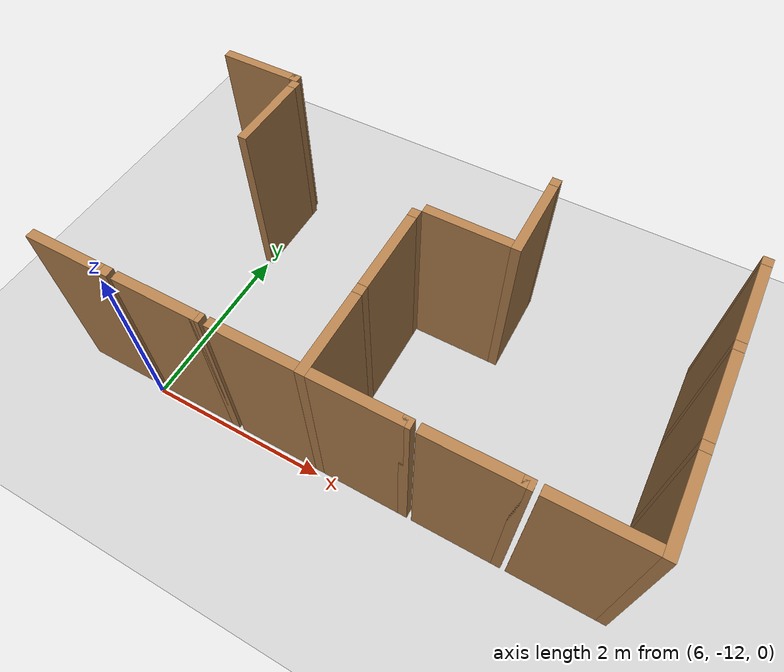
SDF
<sdf version="1.6">
 <world name="default">
  <include><uri>model://sun</uri></include>
  <model name="ground_plane">
   <static>true</static>
   <link name="link">
    <collision name="collision"><geometry><plane><size>12.0 12.0</size></plane></geometry></collision>
    <visual name="visual">
     <cast_shadows>false</cast_shadows>
     <geometry><plane><size>12.0 12.0</size></plane></geometry>
     <material>
      <script><uri>file://media/materials/scripts/gazebo.material</uri><name>Gazebo/Grey</name></script>
     </material>
    </visual>
   </link>
   <pose>6.0 -6.0 0 0 0 0</pose>
  </model>
  <model name="vwall_9_6">
   <pose>6.0 -9.5 1.0 0 0 0</pose>
   <link name="link">
    <collision name="collision"><geometry><box><size>0.1 0.9 2</size></box></geometry></collision>
    <visual name="visual">
     <geometry><box><size>0.1 0.9 2</size></box></geometry>
     <material>
      <script><uri>file://media/materials/scripts/gazebo.material</uri><name>Gazebo/Wood</name></script>
     </material>
    </visual>
   </link>
  </model>
  <model name="joint_6.0_-9.0">
   <pose>6.0 -9.0 1.0 0 0 0</pose>
   <link name="link">
    <collision name="collision"><geometry><box><size>0.1 0.1 2</size></box></geometry></collision>
    <visual name="visual">
     <geometry><box><size>0.1 0.1 2</size></box></geometry>
     <material>
      <script><uri>file://media/materials/scripts/gazebo.material</uri><name>Gazebo/Wood</name></script>
     </material>
    </visual>
   </link>
  </model>
  <model name="vwall_9_9">
   <pose>9.0 -9.5 1.0 0 0 0</pose>
   <link name="link">
    <collision name="collision"><geometry><box><size>0.1 0.9 2</size></box></geometry></collision>
    <visual name="visual">
     <geometry><box><size>0.1 0.9 2</size></box></geometry>
     <material>
      <script><uri>file://media/materials/scripts/gazebo.material</uri><name>Gazebo/Wood</name></script>
     </material>
    </visual>
   </link>
  </model>
  <model name="joint_9.0_-9.0">
   <pose>9.0 -9.0 1.0 0 0 0</pose>
   <link name="link">
    <collision name="collision"><geometry><box><size>0.1 0.1 2</size></box></geometry></collision>
    <visual name="visual">
     <geometry><box><size>0.1 0.1 2</size></box></geometry>
     <material>
      <script><uri>file://media/materials/scripts/gazebo.material</uri><name>Gazebo/Wood</name></script>
     </material>
    </visual>
   </link>
  </model>
  <model name="vwall_9_11">
   <pose>11.0 -9.5 1.0 0 0 0</pose>
   <link name="link">
    <collision name="collision"><geometry><box><size>0.1 0.9 2</size></box></geometry></collision>
    <visual name="visual">
     <geometry><box><size>0.1 0.9 2</size></box></geometry>
     <material>
      <script><uri>file://media/materials/scripts/gazebo.material</uri><name>Gazebo/Wood</name></script>
     </material>
    </visual>
   </link>
  </model>
  <model name="joint_11.0_-9.0">
   <pose>11.0 -9.0 1.0 0 0 0</pose>
   <link name="link">
    <collision name="collision"><geometry><box><size>0.1 0.1 2</size></box></geometry></collision>
    <visual name="visual">
     <geometry><box><size>0.1 0.1 2</size></box></geometry>
     <material>
      <script><uri>file://media/materials/scripts/gazebo.material</uri><name>Gazebo/Wood</name></script>
     </material>
    </visual>
   </link>
  </model>
  <model name="vwall_10_8">
   <pose>8.0 -10.5 1.0 0 0 0</pose>
   <link name="link">
    <collision name="collision"><geometry><box><size>0.1 0.9 2</size></box></geometry></collision>
    <visual name="visual">
     <geometry><box><size>0.1 0.9 2</size></box></geometry>
     <material>
      <script><uri>file://media/materials/scripts/gazebo.material</uri><name>Gazebo/Wood</name></script>
     </material>
    </visual>
   </link>
  </model>
  <model name="joint_8.0_-10.0">
   <pose>8.0 -10.0 1.0 0 0 0</pose>
   <link name="link">
    <collision name="collision"><geometry><box><size>0.1 0.1 2</size></box></geometry></collision>
    <visual name="visual">
     <geometry><box><size>0.1 0.1 2</size></box></geometry>
     <material>
      <script><uri>file://media/materials/scripts/gazebo.material</uri><name>Gazebo/Wood</name></script>
     </material>
    </visual>
   </link>
  </model>
  <model name="vwall_10_11">
   <pose>11.0 -10.5 1.0 0 0 0</pose>
   <link name="link">
    <collision name="collision"><geometry><box><size>0.1 0.9 2</size></box></geometry></collision>
    <visual name="visual">
     <geometry><box><size>0.1 0.9 2</size></box></geometry>
     <material>
      <script><uri>file://media/materials/scripts/gazebo.material</uri><name>Gazebo/Wood</name></script>
     </material>
    </visual>
   </link>
  </model>
  <model name="joint_11.0_-10.0">
   <pose>11.0 -10.0 1.0 0 0 0</pose>
   <link name="link">
    <collision name="collision"><geometry><box><size>0.1 0.1 2</size></box></geometry></collision>
    <visual name="visual">
     <geometry><box><size>0.1 0.1 2</size></box></geometry>
     <material>
      <script><uri>file://media/materials/scripts/gazebo.material</uri><name>Gazebo/Wood</name></script>
     </material>
    </visual>
   </link>
  </model>
  <model name="vwall_11_8">
   <pose>8.0 -11.5 1.0 0 0 0</pose>
   <link name="link">
    <collision name="collision"><geometry><box><size>0.1 0.9 2</size></box></geometry></collision>
    <visual name="visual">
     <geometry><box><size>0.1 0.9 2</size></box></geometry>
     <material>
      <script><uri>file://media/materials/scripts/gazebo.material</uri><name>Gazebo/Wood</name></script>
     </material>
    </visual>
   </link>
  </model>
  <model name="joint_8.0_-11.0">
   <pose>8.0 -11.0 1.0 0 0 0</pose>
   <link name="link">
    <collision name="collision"><geometry><box><size>0.1 0.1 2</size></box></geometry></collision>
    <visual name="visual">
     <geometry><box><size>0.1 0.1 2</size></box></geometry>
     <material>
      <script><uri>file://media/materials/scripts/gazebo.material</uri><name>Gazebo/Wood</name></script>
     </material>
    </visual>
   </link>
  </model>
  <model name="vwall_11_11">
   <pose>11.0 -11.5 1.0 0 0 0</pose>
   <link name="link">
    <collision name="collision"><geometry><box><size>0.1 0.9 2</size></box></geometry></collision>
    <visual name="visual">
     <geometry><box><size>0.1 0.9 2</size></box></geometry>
     <material>
      <script><uri>file://media/materials/scripts/gazebo.material</uri><name>Gazebo/Wood</name></script>
     </material>
    </visual>
   </link>
  </model>
  <model name="joint_11.0_-11.0">
   <pose>11.0 -11.0 1.0 0 0 0</pose>
   <link name="link">
    <collision name="collision"><geometry><box><size>0.1 0.1 2</size></box></geometry></collision>
    <visual name="visual">
     <geometry><box><size>0.1 0.1 2</size></box></geometry>
     <material>
      <script><uri>file://media/materials/scripts/gazebo.material</uri><name>Gazebo/Wood</name></script>
     </material>
    </visual>
   </link>
  </model>
  <model name="hwall_8_5">
   <pose>5.5 -8.9 1.0 0 0 0</pose>
   <link name="link">
    <collision name="collision"><geometry><box><size>0.9 0.1 2</size></box></geometry></collision>
    <visual name="visual">
     <geometry><box><size>0.9 0.1 2</size></box></geometry>
     <material>
      <script><uri>file://media/materials/scripts/gazebo.material</uri><name>Gazebo/Wood</name></script>
     </material>
    </visual>
   </link>
  </model>
  <model name="joint_5.95_-8.9">
   <pose>5.95 -8.9 1.0 0 0 0</pose>
   <link name="link">
    <collision name="collision"><geometry><box><size>0.1 0.1 2</size></box></geometry></collision>
    <visual name="visual">
     <geometry><box><size>0.1 0.1 2</size></box></geometry>
     <material>
      <script><uri>file://media/materials/scripts/gazebo.material</uri><name>Gazebo/Wood</name></script>
     </material>
    </visual>
   </link>
  </model>
  <model name="hwall_9_8">
   <pose>8.5 -9.9 1.0 0 0 0</pose>
   <link name="link">
    <collision name="collision"><geometry><box><size>0.9 0.1 2</size></box></geometry></collision>
    <visual name="visual">
     <geometry><box><size>0.9 0.1 2</size></box></geometry>
     <material>
      <script><uri>file://media/materials/scripts/gazebo.material</uri><name>Gazebo/Wood</name></script>
     </material>
    </visual>
   </link>
  </model>
  <model name="hwall_11_5">
   <pose>5.5 -11.9 1.0 0 0 0</pose>
   <link name="link">
    <collision name="collision"><geometry><box><size>0.9 0.1 2</size></box></geometry></collision>
    <visual name="visual">
     <geometry><box><size>0.9 0.1 2</size></box></geometry>
     <material>
      <script><uri>file://media/materials/scripts/gazebo.material</uri><name>Gazebo/Wood</name></script>
     </material>
    </visual>
   </link>
  </model>
  <model name="joint_5.95_-11.9">
   <pose>5.95 -11.9 1.0 0 0 0</pose>
   <link name="link">
    <collision name="collision"><geometry><box><size>0.1 0.1 2</size></box></geometry></collision>
    <visual name="visual">
     <geometry><box><size>0.1 0.1 2</size></box></geometry>
     <material>
      <script><uri>file://media/materials/scripts/gazebo.material</uri><name>Gazebo/Wood</name></script>
     </material>
    </visual>
   </link>
  </model>
  <model name="hwall_11_6">
   <pose>6.5 -11.9 1.0 0 0 0</pose>
   <link name="link">
    <collision name="collision"><geometry><box><size>0.9 0.1 2</size></box></geometry></collision>
    <visual name="visual">
     <geometry><box><size>0.9 0.1 2</size></box></geometry>
     <material>
      <script><uri>file://media/materials/scripts/gazebo.material</uri><name>Gazebo/Wood</name></script>
     </material>
    </visual>
   </link>
  </model>
  <model name="joint_6.95_-11.9">
   <pose>6.95 -11.9 1.0 0 0 0</pose>
   <link name="link">
    <collision name="collision"><geometry><box><size>0.1 0.1 2</size></box></geometry></collision>
    <visual name="visual">
     <geometry><box><size>0.1 0.1 2</size></box></geometry>
     <material>
      <script><uri>file://media/materials/scripts/gazebo.material</uri><name>Gazebo/Wood</name></script>
     </material>
    </visual>
   </link>
  </model>
  <model name="hwall_11_7">
   <pose>7.5 -11.9 1.0 0 0 0</pose>
   <link name="link">
    <collision name="collision"><geometry><box><size>0.9 0.1 2</size></box></geometry></collision>
    <visual name="visual">
     <geometry><box><size>0.9 0.1 2</size></box></geometry>
     <material>
      <script><uri>file://media/materials/scripts/gazebo.material</uri><name>Gazebo/Wood</name></script>
     </material>
    </visual>
   </link>
  </model>
  <model name="hwall_11_8">
   <pose>8.5 -11.9 1.0 0 0 0</pose>
   <link name="link">
    <collision name="collision"><geometry><box><size>0.9 0.1 2</size></box></geometry></collision>
    <visual name="visual">
     <geometry><box><size>0.9 0.1 2</size></box></geometry>
     <material>
      <script><uri>file://media/materials/scripts/gazebo.material</uri><name>Gazebo/Wood</name></script>
     </material>
    </visual>
   </link>
  </model>
  <model name="joint_8.95_-11.9">
   <pose>8.95 -11.9 1.0 0 0 0</pose>
   <link name="link">
    <collision name="collision"><geometry><box><size>0.1 0.1 2</size></box></geometry></collision>
    <visual name="visual">
     <geometry><box><size>0.1 0.1 2</size></box></geometry>
     <material>
      <script><uri>file://media/materials/scripts/gazebo.material</uri><name>Gazebo/Wood</name></script>
     </material>
    </visual>
   </link>
  </model>
  <model name="hwall_11_9">
   <pose>9.5 -11.9 1.0 0 0 0</pose>
   <link name="link">
    <collision name="collision"><geometry><box><size>0.9 0.1 2</size></box></geometry></collision>
    <visual name="visual">
     <geometry><box><size>0.9 0.1 2</size></box></geometry>
     <material>
      <script><uri>file://media/materials/scripts/gazebo.material</uri><name>Gazebo/Wood</name></script>
     </material>
    </visual>
   </link>
  </model>
  <model name="joint_9.95_-11.9">
   <pose>9.95 -11.9 1.0 0 0 0</pose>
   <link name="link">
    <collision name="collision"><geometry><box><size>0.1 0.1 2</size></box></geometry></collision>
    <visual name="visual">
     <geometry><box><size>0.1 0.1 2</size></box></geometry>
     <material>
      <script><uri>file://media/materials/scripts/gazebo.material</uri><name>Gazebo/Wood</name></script>
     </material>
    </visual>
   </link>
  </model>
  <model name="hwall_11_10">
   <pose>10.5 -11.9 1.0 0 0 0</pose>
   <link name="link">
    <collision name="collision"><geometry><box><size>0.9 0.1 2</size></box></geometry></collision>
    <visual name="visual">
     <geometry><box><size>0.9 0.1 2</size></box></geometry>
     <material>
      <script><uri>file://media/materials/scripts/gazebo.material</uri><name>Gazebo/Wood</name></script>
     </material>
    </visual>
   </link>
  </model>
 </world>
</sdf>
